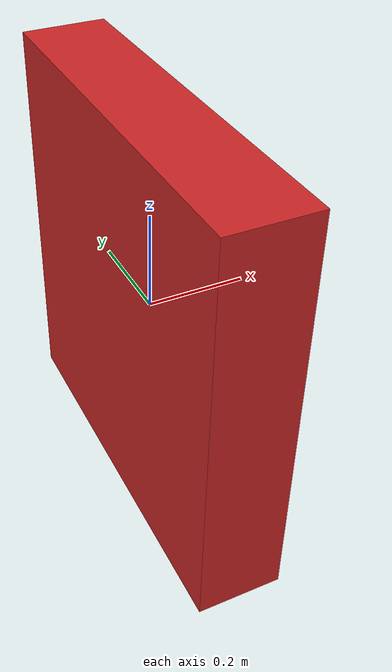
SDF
<?xml version='1.0'?>
<sdf version="1.4">
<model name="rig_base">
  <static>true</static>
    <static>true</static>
    <link name="link">
      <collision name="collision_rig_base">
        <geometry>
          <box>
            <size>0.17 0.80 0.83</size>
          </box>
        </geometry>
      </collision>
      <visual name="visual_rig_base">
        <geometry>
          <box>
            <size>0.17 0.80 0.83</size>
          </box>
        </geometry>
        <material>
          <script>
            <uri>file://media/materials/scripts/gazebo.material</uri>
            <name>Gazebo/Red</name>
          </script>
        </material>
      </visual>
    </link>
  </model>
</sdf>
